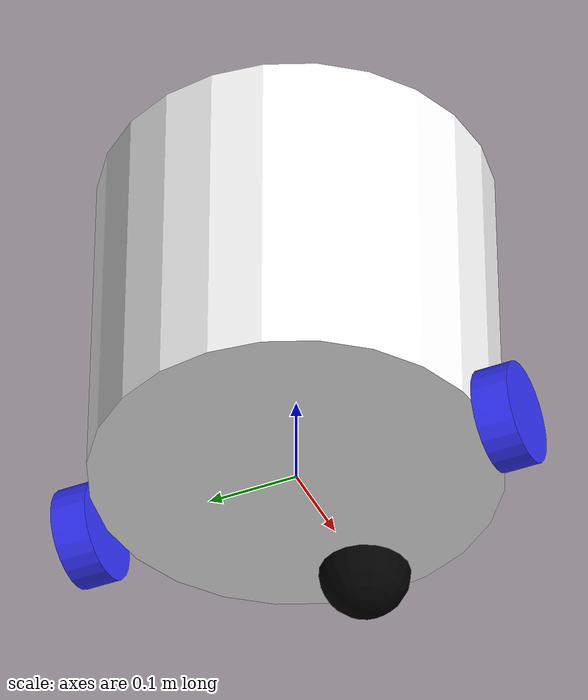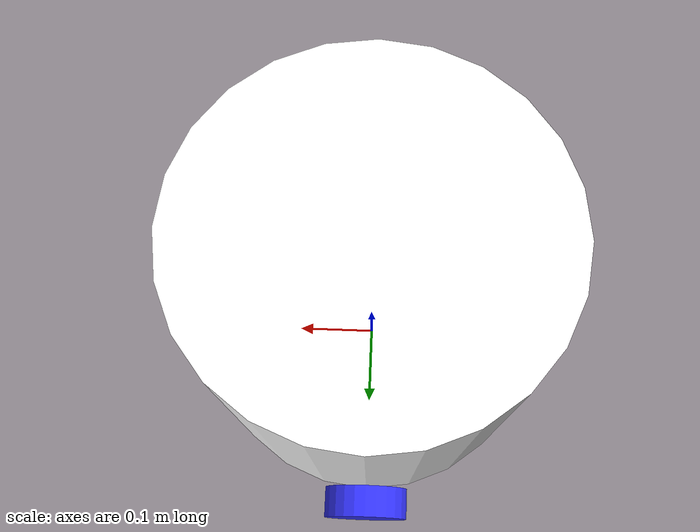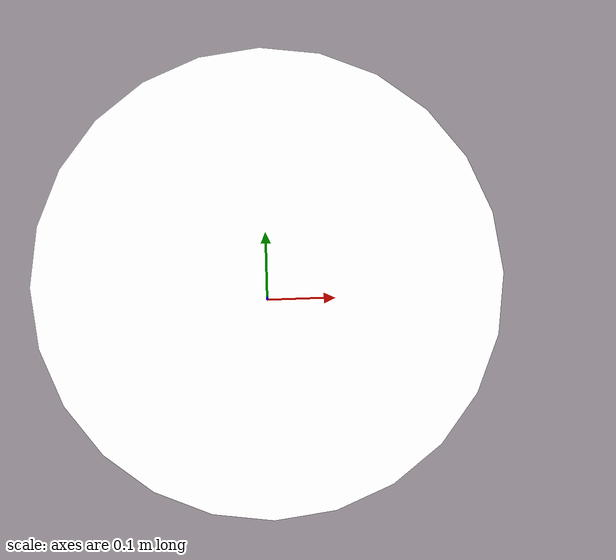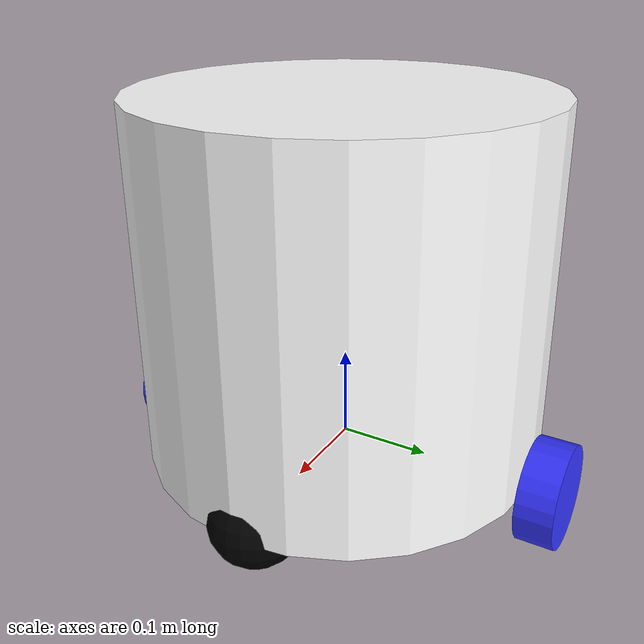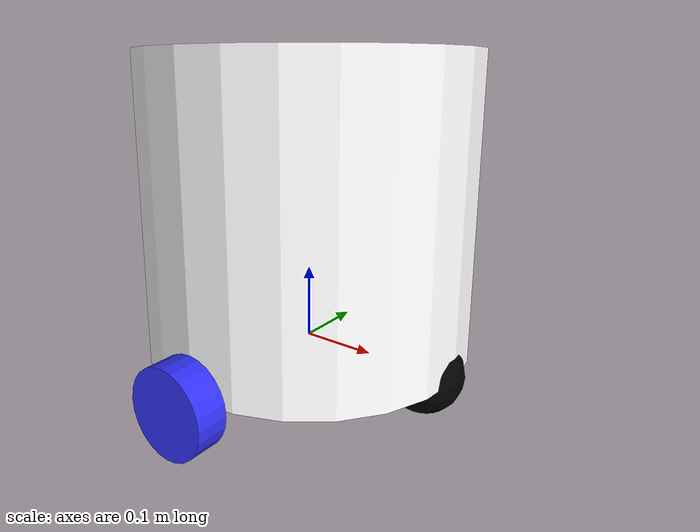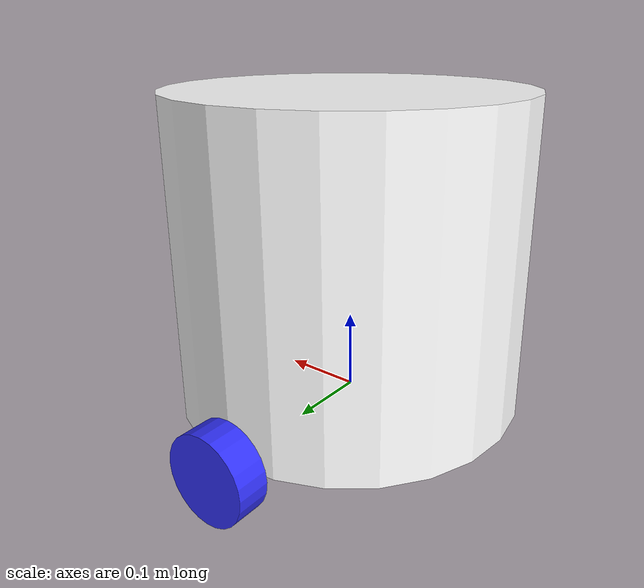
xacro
<?xml version="1.0"?>
<robot xmlns:xacro="http://www.ros.org/wiki/xacro" >

    <xacro:include filename="inertial_macros.xacro"/>

    <material name="white">
        <color rgba="1 1 1 1" />
    </material>

    <material name="orange">
        <color rgba="1 0.3 0.1 1"/>
    </material>

    <material name="blue">
        <color rgba="0.2 0.2 1 1"/>
    </material>

    <material name="red">
        <color rgba="1 0 0 1"/>
    </material>

    <material name="black">
        <color rgba="0 0 0 1"/>
    </material>

    <!-- BASE LINK -->

    <link name="base_link">

    </link>

    <!-- CHASSIS LINK -->

    <joint name="chassis_joint" type="fixed">
        <parent link="base_link"/>
        <child link="chassis"/>
        <origin xyz="0 0 0"/>
    </joint>

    <link name="chassis">
        <visual>
            <origin xyz="0 0 0.195"/>
            <geometry>
                <cylinder radius="0.22" length="0.39"/>
            </geometry>
            <material name="white"/>
        </visual>
        <collision>
            <origin xyz="0 0 0.195"/>
            <geometry>
                <cylinder radius="0.22" length="0.39"/>
            </geometry>
        </collision>
        <xacro:inertial_cylinder mass="1.0" length="0.39" radius="0.22">
            <origin xyz="0 0 0.195" rpy="0 0 0"/>
        </xacro:inertial_cylinder>
    </link>

    <gazebo reference="chassis">
        <material>Gazebo/White</material>
    </gazebo>

    <!-- LEFT WHEEL LINK -->

    <joint name="left_wheel_joint" type="continuous">
        <parent link="base_link"/>
        <child link="left_wheel"/>
        <origin xyz="0 0.24 0" rpy="-${pi/2} 0 0" />
        <axis xyz="0 0 1"/>
    </joint>

    <link name="left_wheel">
        <visual>
            <geometry>
                <cylinder radius="0.055" length="0.04"/>
            </geometry>
            <material name="blue"/>
        </visual>
        <collision>
            <geometry>
                <cylinder radius="0.055" length="0.04"/>
            </geometry>
        </collision>
        <xacro:inertial_cylinder mass="0.1" length="0.04" radius="0.055">
            <origin xyz="0 0 0" rpy="0 0 0"/>
        </xacro:inertial_cylinder>
    </link>

    <gazebo reference="left_wheel">
        <material>Gazebo/Blue</material>
    </gazebo>

    <!-- RIGHT WHEEL LINK -->

    <joint name="right_wheel_joint" type="continuous">
        <parent link="base_link"/>
        <child link="right_wheel"/>
        <origin xyz="0 -0.24 0" rpy="${pi/2} 0 0" />
        <axis xyz="0 0 -1"/>
    </joint>

    <link name="right_wheel">
        <visual>
            <geometry>
                <cylinder radius="0.055" length="0.04"/>
            </geometry>
            <material name="blue"/>
        </visual>
        <collision>
            <geometry>
                <cylinder radius="0.055" length="0.04"/>
            </geometry>
        </collision>
        <xacro:inertial_cylinder mass="0.1" length="0.04" radius="0.055">
            <origin xyz="0 0 0" rpy="0 0 0"/>
        </xacro:inertial_cylinder>
    </link>

    <gazebo reference="right_wheel">
        <material>Gazebo/Blue</material>
    </gazebo>

    <!-- CASTER WHEEL LINK -->

    <joint name="caster_wheel_joint" type="fixed">
        <parent link="chassis"/>
        <child link="caster_wheel"/>
        <origin xyz="0.18 0 0"/>
    </joint>

    <link name="caster_wheel">
        <visual>
            <geometry>
                <sphere radius="0.05"/>
            </geometry>
            <material name="black"/>
        </visual>
        <collision>
            <geometry>
                <sphere radius="0.05"/>
            </geometry>
        </collision>
        <xacro:inertial_sphere mass="0.1" radius="0.05">
            <origin xyz="0 0 0" rpy="0 0 0"/>
        </xacro:inertial_sphere>
    </link>

    <gazebo reference="caster_wheel">
        <material>Gazebo/Black</material>
        <mu1 value="0.001"/>
        <mu2 value="0.001"/>
    </gazebo>

</robot>
